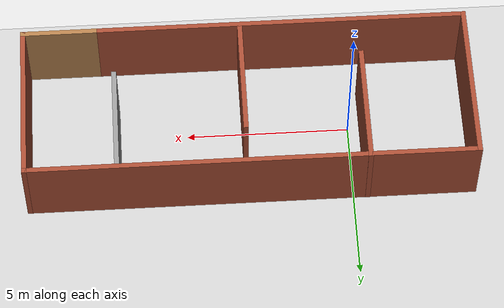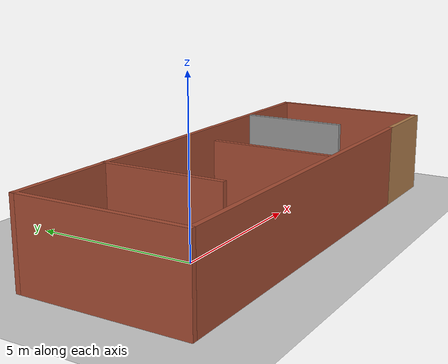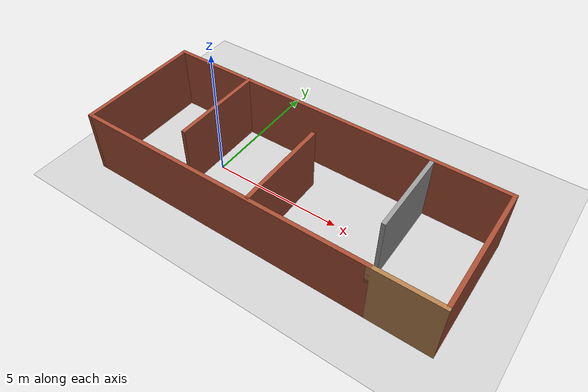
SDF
<?xml version="1.0"?>
<sdf version="1.6">
  <world name="default">

    <include>
      <uri>model://ground_plane</uri>
    </include>

    <include>
      <uri>model://sun</uri>
    </include>

    <scene>
      <shadows>false</shadows>
    </scene>

    <gui fullscreen='0'>
      <camera name='user_camera'>
        <pose frame=''>0.319654 -0.235002 9.29441 0 1.5138 0.009599</pose>
        <view_controller>orbit</view_controller>
        <projection_type>perspective</projection_type>
      </camera>
    </gui>

    <physics type="ode">
      <real_time_update_rate>1000.0</real_time_update_rate>
      <max_step_size>0.001</max_step_size>
      <real_time_factor>1</real_time_factor>
      <ode>
        <solver>
          <type>quick</type>
          <iters>150</iters>
          <precon_iters>0</precon_iters>
          <sor>1.400000</sor>
          <use_dynamic_moi_rescaling>1</use_dynamic_moi_rescaling>
        </solver>
        <constraints>
          <cfm>0.00001</cfm>
          <erp>0.2</erp>
          <contact_max_correcting_vel>2000.000000</contact_max_correcting_vel>
          <contact_surface_layer>0.01000</contact_surface_layer>
        </constraints>
      </ode>
    </physics>

    <model name="fr_cafe">
      <static>1</static>
      <include>
        <uri>model://fr_cafe</uri>
      </include>
    </model>

  </world>
</sdf>

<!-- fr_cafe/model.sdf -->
<sdf version='1.7'>
  <model name='fr_cafe'>
    <pose>3.11 -0.069631 0 0 -0 0</pose>
    <link name='Wall_0'>
      <collision name='Wall_0_Collision'>
        <geometry>
          <box>
            <size>11.25 0.15 2.5</size>
          </box>
        </geometry>
        <pose>0 0 1.25 0 -0 0</pose>
      </collision>
      <visual name='Wall_0_Visual'>
        <pose>0 0 1.25 0 -0 0</pose>
        <geometry>
          <box>
            <size>11.25 0.15 2.5</size>
          </box>
        </geometry>
        <material>
          <script>
            <uri>file://media/materials/scripts/gazebo.material</uri>
            <name>Gazebo/Bricks</name>
          </script>
          <ambient>1 1 1 1</ambient>
        </material>
        <meta>
          <layer>0</layer>
        </meta>
      </visual>
      <pose>-1.1 -2.43037 0 0 -0 0</pose>
    </link>
    <link name='Wall_10'>
      <collision name='Wall_10_Collision'>
        <geometry>
          <box>
            <size>3.75 0.15 2.5</size>
          </box>
        </geometry>
        <pose>0 0 1.25 0 -0 0</pose>
      </collision>
      <visual name='Wall_10_Visual'>
        <pose>0 0 1.25 0 -0 0</pose>
        <geometry>
          <box>
            <size>3.75 0.15 2.5</size>
          </box>
        </geometry>
        <material>
          <script>
            <uri>file://media/materials/scripts/gazebo.material</uri>
            <name>Gazebo/Bricks</name>
          </script>
          <ambient>1 1 1 1</ambient>
        </material>
        <meta>
          <layer>0</layer>
        </meta>
      </visual>
      <pose>0.126728 -0.570306 0 0 -0 1.5708</pose>
    </link>
    <link name='Wall_12'>
      <collision name='Wall_12_Collision'>
        <geometry>
          <box>
            <size>3.25 0.15 2.5</size>
          </box>
        </geometry>
        <pose>0 0 1.25 0 -0 0</pose>
      </collision>
      <visual name='Wall_12_Visual'>
        <pose>0 0 1.25 0 -0 0</pose>
        <geometry>
          <box>
            <size>3.25 0.15 2.5</size>
          </box>
        </geometry>
        <material>
          <script>
            <uri>file://media/materials/scripts/gazebo.material</uri>
            <name>Gazebo/Grey</name>
          </script>
          <ambient>1 1 1 1</ambient>
        </material>
        <meta>
          <layer>0</layer>
        </meta>
      </visual>
      <pose>4.04133 0.721669 0 0 -0 -1.5708</pose>
    </link>
    <link name='Wall_2'>
      <collision name='Wall_2_Collision'>
        <geometry>
          <box>
            <size>2.5 0.15 2.5</size>
          </box>
        </geometry>
        <pose>0 0 1.25 0 -0 0</pose>
      </collision>
      <visual name='Wall_2_Visual'>
        <pose>0 0 1.25 0 -0 0</pose>
        <geometry>
          <box>
            <size>2.5 0.15 2.5</size>
          </box>
        </geometry>
        <material>
          <script>
            <uri>file://media/materials/scripts/gazebo.material</uri>
            <name>Gazebo/Wood</name>
          </script>
          <ambient>1 1 1 1</ambient>
        </material>
        <meta>
          <layer>0</layer>
        </meta>
      </visual>
      <pose>5.625 -2.43037 0 0 -0 0</pose>
    </link>
    <link name='Wall_4'>
      <collision name='Wall_4_Collision'>
        <geometry>
          <box>
            <size>5 0.15 2.5</size>
          </box>
        </geometry>
        <pose>0 0 1.25 0 -0 0</pose>
      </collision>
      <visual name='Wall_4_Visual'>
        <pose>0 0 1.25 0 -0 0</pose>
        <geometry>
          <box>
            <size>5 0.15 2.5</size>
          </box>
        </geometry>
        <material>
          <script>
            <uri>file://media/materials/scripts/gazebo.material</uri>
            <name>Gazebo/Bricks</name>
          </script>
          <ambient>1 1 1 1</ambient>
        </material>
        <meta>
          <layer>0</layer>
        </meta>
      </visual>
      <pose>6.8 -0.005369 0 0 -0 1.5708</pose>
    </link>
    <link name='Wall_5'>
      <collision name='Wall_5_Collision'>
        <geometry>
          <box>
            <size>13.75 0.15 2.5</size>
          </box>
        </geometry>
        <pose>0 0 1.25 0 -0 0</pose>
      </collision>
      <visual name='Wall_5_Visual'>
        <pose>0 0 1.25 0 -0 0</pose>
        <geometry>
          <box>
            <size>13.75 0.15 2.5</size>
          </box>
        </geometry>
        <material>
          <script>
            <uri>file://media/materials/scripts/gazebo.material</uri>
            <name>Gazebo/Bricks</name>
          </script>
          <ambient>1 1 1 1</ambient>
        </material>
        <meta>
          <layer>0</layer>
        </meta>
      </visual>
      <pose>-0 2.41963 0 0 -0 3.14159</pose>
    </link>
    <link name='Wall_6'>
      <collision name='Wall_6_Collision'>
        <geometry>
          <box>
            <size>5 0.15 2.5</size>
          </box>
        </geometry>
        <pose>0 0 1.25 0 -0 0</pose>
      </collision>
      <visual name='Wall_6_Visual'>
        <pose>0 0 1.25 0 -0 0</pose>
        <geometry>
          <box>
            <size>5 0.15 2.5</size>
          </box>
        </geometry>
        <material>
          <script>
            <uri>file://media/materials/scripts/gazebo.material</uri>
            <name>Gazebo/Bricks</name>
          </script>
          <ambient>1 1 1 1</ambient>
        </material>
        <meta>
          <layer>0</layer>
        </meta>
      </visual>
      <pose>-6.8 -0.005369 0 0 -0 -1.5708</pose>
    </link>
    <link name='Wall_8'>
      <collision name='Wall_8_Collision'>
        <geometry>
          <box>
            <size>3.75 0.15 2.5</size>
          </box>
        </geometry>
        <pose>0 0 1.25 0 -0 0</pose>
      </collision>
      <visual name='Wall_8_Visual'>
        <pose>0 0 1.25 0 -0 0</pose>
        <geometry>
          <box>
            <size>3.75 0.15 2.5</size>
          </box>
        </geometry>
        <material>
          <script>
            <uri>file://media/materials/scripts/gazebo.material</uri>
            <name>Gazebo/Bricks</name>
          </script>
          <ambient>1 1 1 1</ambient>
        </material>
        <meta>
          <layer>0</layer>
        </meta>
      </visual>
      <pose>-3.5366 0.630369 0 0 -0 -1.5708</pose>
    </link>
    <static>1</static>
  </model>
</sdf>
